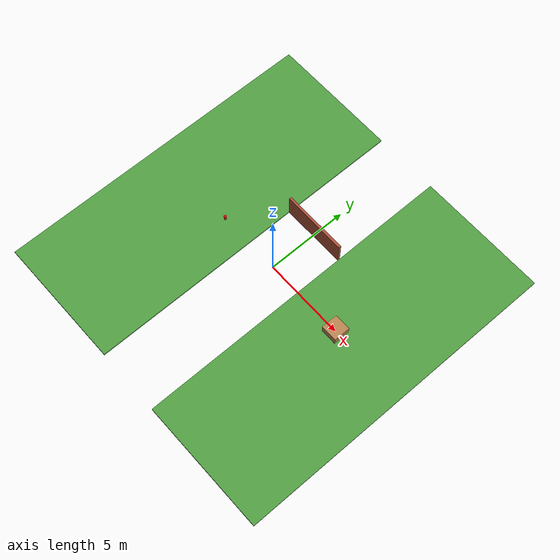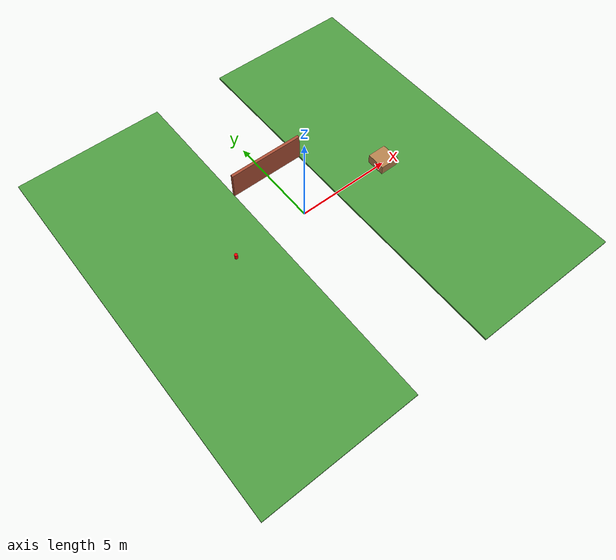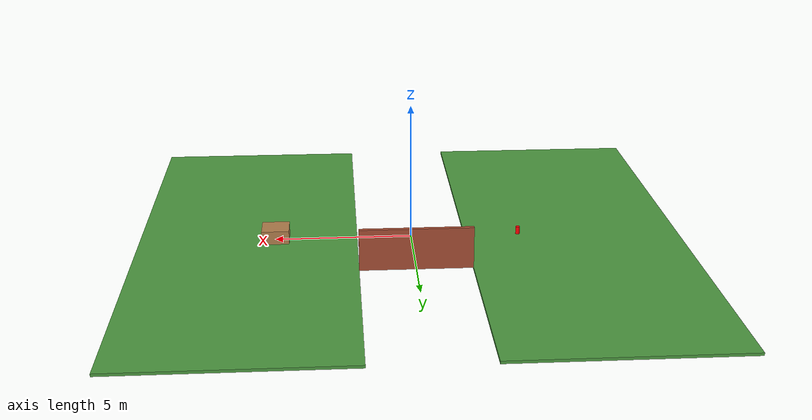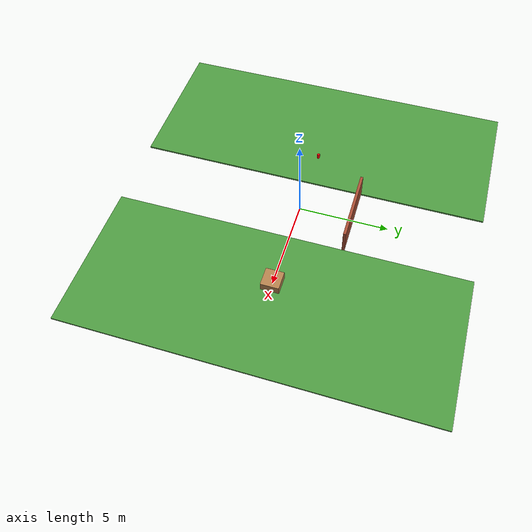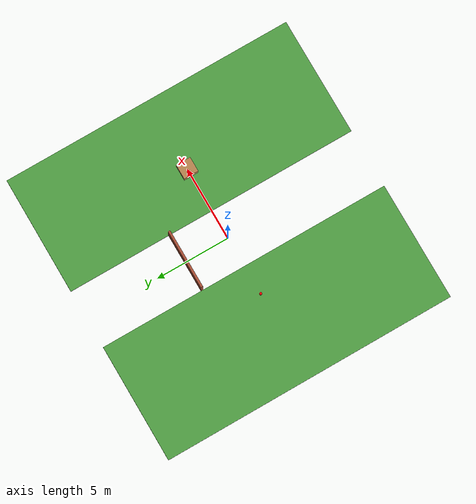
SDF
<sdf version="1.4">
 <world name="default">
  <scene><ambient>0.4 0.4 0.4 1</ambient><background>0.7 0.7 0.7 1</background><shadows>true</shadows></scene>
  <include><uri>model://sun</uri></include>
  <model name="test_ground">
   <link name="body">
    <collision name="geom">
     <geometry><plane><normal>0 0 1</normal></plane></geometry>
     <surface><friction><ode><mu>100</mu><mu2>50</mu2></ode></friction></surface>
    </collision>
   </link>
   <static>true</static>
  </model>
  <include><uri>model://grass</uri><pose>6 0 -0.05 0 0 0</pose></include>
  <include><uri>model://grass</uri><pose>-6 0 -0.05 0 0 0</pose></include>
  <include><uri>model://brick_wall</uri><pose>0 3 0 0 0 0</pose></include>
  <model name="unit_box_0">
   <pose>5 0 0 0 -0 0</pose>
   <link name="link">
    <inertial>
     <mass>1</mass>
     <inertia>
      <ixx>0.166667</ixx>
      <ixy>0</ixy>
      <ixz>0</ixz>
      <iyy>0.166667</iyy>
      <iyz>0</iyz>
      <izz>0.166667</izz>
     </inertia>
    </inertial>
    <collision name="collision"><geometry><box><size>1 1 1</size></box></geometry></collision>
    <visual name="visual">
     <geometry><box><size>1 1 1</size></box></geometry>
     <material>
      <script><name>Gazebo/WoodPallet</name><uri>file://media/materials/scripts/gazebo.material</uri></script>
     </material>
    </visual>
   </link>
  </model>
  <include><uri>model://beacon_6</uri><pose>-4 0 0 0 0 0</pose></include>
  <physics type="ode">
   <real_time_update_rate>1000.0</real_time_update_rate>
   <max_step_size>0.001</max_step_size>
   <real_time_factor>1</real_time_factor>
   <ode>
    <solver>
     <type>quick</type>
     <iters>150</iters>
     <precon_iters>0</precon_iters>
     <sor>1.400000</sor>
     <use_dynamic_moi_rescaling>1</use_dynamic_moi_rescaling>
    </solver>
    <constraints>
     <cfm>0.00001</cfm>
     <erp>0.2</erp>
     <contact_max_correcting_vel>2000.000000</contact_max_correcting_vel>
     <contact_surface_layer>0.01000</contact_surface_layer>
    </constraints>
   </ode>
  </physics>
 </world>
</sdf>

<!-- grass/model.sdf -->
<sdf version='1.6'>
  <model name='grass'>
    <pose frame=''>-5.216 -3.221 0 0 -0 0</pose>
    <link name='grass_1'>
      <collision name='grass_1_Collision'>
        <geometry>
          <box>
            <size>8 20 0.1</size>
          </box>
        </geometry>
        <pose frame=''>0 0 0 0 0 0</pose>
      </collision>
      <visual name='grass_1_Visual'>
        <pose frame=''>0 0 0 0 0 0</pose>
        <geometry>
          <box>
            <size>8 20 0.1</size>
          </box>
        </geometry>
        <material>
          <script>
            <uri>file://media/materials/scripts/gazebo.material</uri>
            <name>Gazebo/Grass</name>
          </script>
          <ambient>1 1 1 1</ambient>
        </material>
      </visual>
      <pose frame=''>0 0 0 0 -0 0</pose>
    </link>
    <static>1</static>
  </model>
</sdf>

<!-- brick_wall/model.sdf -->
<sdf version='1.6'>
  <model name='brick_wall'>
    <pose frame=''>-5.216 -3.221 0 0 -0 0</pose>
    <link name='Wall_3'>
      <collision name='Wall_3_Collision'>
        <geometry>
          <box>
            <size>4 0.15 1.5</size>
          </box>
        </geometry>
        <pose frame=''>0 0 0.75 0 -0 0</pose>
      </collision>
      <visual name='Wall_3_Visual'>
        <pose frame=''>0 0 0.75 0 -0 0</pose>
        <geometry>
          <box>
            <size>4 0.15 1.5</size>
          </box>
        </geometry>
        <material>
          <script>
            <uri>file://media/materials/scripts/gazebo.material</uri>
            <name>Gazebo/Bricks</name>
          </script>
          <ambient>1 1 1 1</ambient>
        </material>
      </visual>
      <pose frame=''>0 0 0 0 -0 0</pose>
    </link>
    <static>1</static>
  </model>
</sdf>

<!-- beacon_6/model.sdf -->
<sdf version='1.4'>
  <model name="beacon_0">
	<static>true</static>
          <link name='chassis_lower'>
            <pose>0 0 0.14 0 0 0</pose>

            <collision name='collision'>
              <geometry>
                <cylinder>
                  <radius>.04</radius>
		  <length>.280</length>
                </cylinder>
              </geometry>
            </collision>

            <visual name='visual'>
              <geometry>
                <cylinder>
                  <radius>.08</radius>
		  <length>.280</length>
                </cylinder>
              </geometry>
        	<material>
          	  <ambient>1 0 0 1</ambient>
          	  <diffuse>1 0 0 1</diffuse>
          	  <specular>0.1 0.1 0.1 1</specular>
         	  <emissive>0 0 0 0</emissive>
        	</material>
            </visual>
          </link>

  </model>
</sdf>
